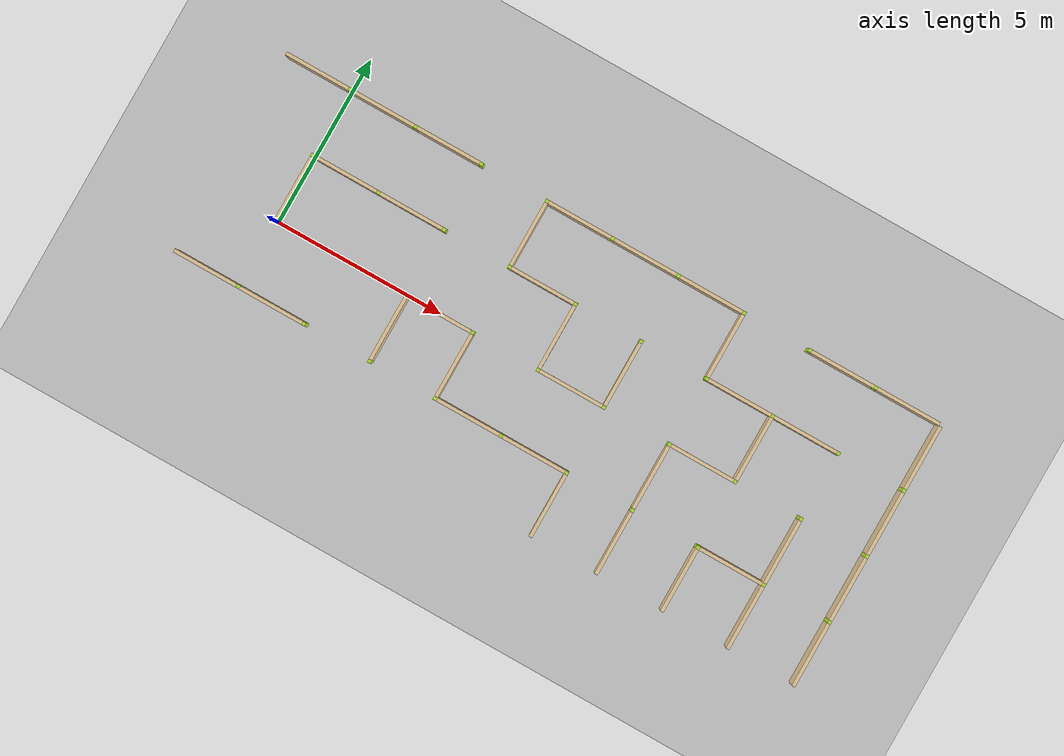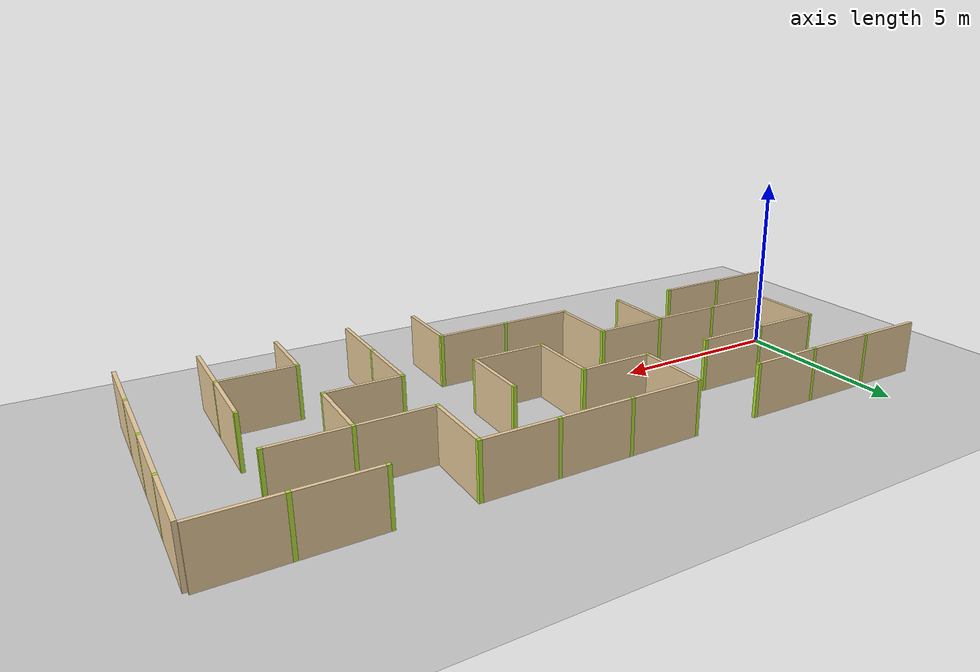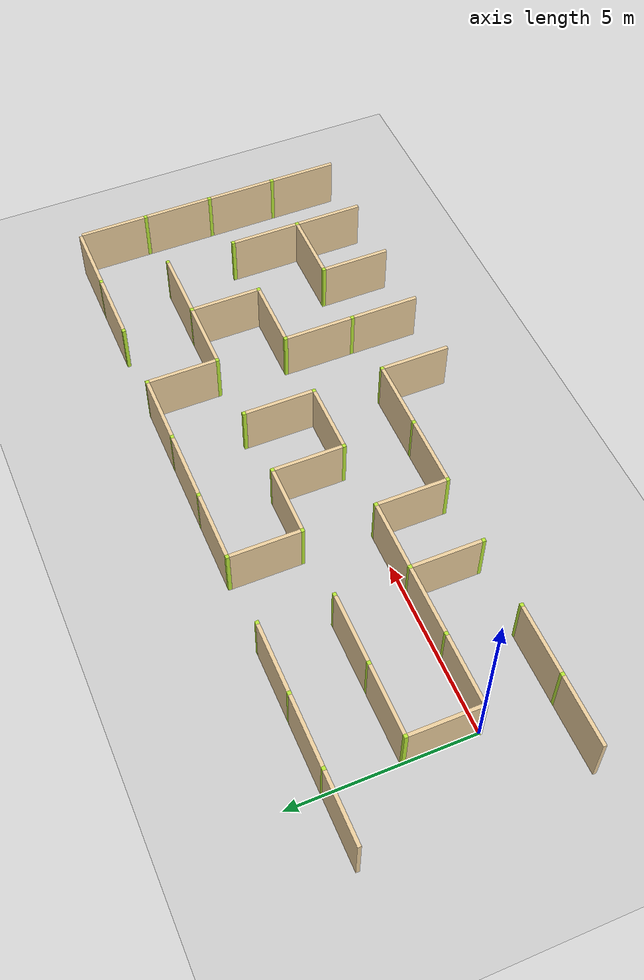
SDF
<sdf version="1.4">
 <world name="maze_world">
  <model name="ground">
   <static>true</static>
   <link name="ground_link">
    <collision name="collision1"><geometry><plane><normal>0 0 1</normal></plane></geometry></collision>
    <visual name="visual1"><geometry><plane><normal>0 0 1</normal><size>100 100</size></plane></geometry></visual>
   </link>
  </model>
  <model name="Untitled">
   <link name="Wall_9_8_h">
    <collision name="Wall_0_Collision">
     <geometry><box><size>1.9 0.1 1.5</size></box></geometry>
     <pose>0 0 0.75 0 -0 0</pose>
    </collision>
    <visual name="Wall_0_Visual">
     <pose>0 0 0.75 0 -0 0</pose>
     <geometry><box><size>1.9 0.1 1.5</size></box></geometry>
     <material>
      <script><uri>file://media/materials/scripts/gazebo.material</uri><name>Gazebo/Grey</name></script>
      <ambient>0.921569 0.807843 0.615686 1</ambient>
     </material>
     <meta><layer>0</layer></meta>
    </visual>
    <pose>-1.0 4 0 0 -0 0</pose>
   </link>
   <link name="Wall_10_8_h">
    <collision name="Wall_0_Collision">
     <geometry><box><size>1.9 0.1 1.5</size></box></geometry>
     <pose>0 0 0.75 0 -0 0</pose>
    </collision>
    <visual name="Wall_0_Visual">
     <pose>0 0 0.75 0 -0 0</pose>
     <geometry><box><size>1.9 0.1 1.5</size></box></geometry>
     <material>
      <script><uri>file://media/materials/scripts/gazebo.material</uri><name>Gazebo/Grey</name></script>
      <ambient>0.921569 0.807843 0.615686 1</ambient>
     </material>
     <meta><layer>0</layer></meta>
    </visual>
    <pose>1.0 4 0 0 -0 0</pose>
   </link>
   <link name="Joint_0_4">
    <collision name="Wall_2_Collision">
     <geometry><box><size>0.1 0.1 1.5</size></box></geometry>
     <pose>0 0 0.75 0 -0 0</pose>
    </collision>
    <visual name="Wall_2_Visual">
     <pose>0 0 0.75 0 -0 0</pose>
     <geometry><box><size>0.1 0.1 1.5</size></box></geometry>
     <material>
      <script><uri>file://media/materials/scripts/gazebo.material</uri><name>Gazebo/Grey</name></script>
      <ambient>0.721569 0.907843 0.215686 1</ambient>
     </material>
     <meta><layer>0</layer></meta>
    </visual>
    <pose>0 4 0 0 -0 0</pose>
   </link>
   <link name="Wall_11_8_h">
    <collision name="Wall_0_Collision">
     <geometry><box><size>1.9 0.1 1.5</size></box></geometry>
     <pose>0 0 0.75 0 -0 0</pose>
    </collision>
    <visual name="Wall_0_Visual">
     <pose>0 0 0.75 0 -0 0</pose>
     <geometry><box><size>1.9 0.1 1.5</size></box></geometry>
     <material>
      <script><uri>file://media/materials/scripts/gazebo.material</uri><name>Gazebo/Grey</name></script>
      <ambient>0.921569 0.807843 0.615686 1</ambient>
     </material>
     <meta><layer>0</layer></meta>
    </visual>
    <pose>3.0 4 0 0 -0 0</pose>
   </link>
   <link name="Joint_2_4">
    <collision name="Wall_2_Collision">
     <geometry><box><size>0.1 0.1 1.5</size></box></geometry>
     <pose>0 0 0.75 0 -0 0</pose>
    </collision>
    <visual name="Wall_2_Visual">
     <pose>0 0 0.75 0 -0 0</pose>
     <geometry><box><size>0.1 0.1 1.5</size></box></geometry>
     <material>
      <script><uri>file://media/materials/scripts/gazebo.material</uri><name>Gazebo/Grey</name></script>
      <ambient>0.721569 0.907843 0.215686 1</ambient>
     </material>
     <meta><layer>0</layer></meta>
    </visual>
    <pose>2 4 0 0 -0 0</pose>
   </link>
   <link name="Joint_4_4">
    <collision name="Wall_2_Collision">
     <geometry><box><size>0.1 0.1 1.5</size></box></geometry>
     <pose>0 0 0.75 0 -0 0</pose>
    </collision>
    <visual name="Wall_2_Visual">
     <pose>0 0 0.75 0 -0 0</pose>
     <geometry><box><size>0.1 0.1 1.5</size></box></geometry>
     <material>
      <script><uri>file://media/materials/scripts/gazebo.material</uri><name>Gazebo/Grey</name></script>
      <ambient>0.721569 0.907843 0.215686 1</ambient>
     </material>
     <meta><layer>0</layer></meta>
    </visual>
    <pose>4 4 0 0 -0 0</pose>
   </link>
   <link name="Wall_13_8_h">
    <collision name="Wall_0_Collision">
     <geometry><box><size>1.9 0.1 1.5</size></box></geometry>
     <pose>0 0 0.75 0 -0 0</pose>
    </collision>
    <visual name="Wall_0_Visual">
     <pose>0 0 0.75 0 -0 0</pose>
     <geometry><box><size>1.9 0.1 1.5</size></box></geometry>
     <material>
      <script><uri>file://media/materials/scripts/gazebo.material</uri><name>Gazebo/Grey</name></script>
      <ambient>0.921569 0.807843 0.615686 1</ambient>
     </material>
     <meta><layer>0</layer></meta>
    </visual>
    <pose>7.0 4 0 0 -0 0</pose>
   </link>
   <link name="Wall_13_8_v">
    <collision name="Wall_0_Collision">
     <geometry><box><size>1.9 0.1 1.5</size></box></geometry>
     <pose>0 0 0.75 0 -0 0</pose>
    </collision>
    <visual name="Wall_0_Visual">
     <pose>0 0 0.75 0 -0 0</pose>
     <geometry><box><size>1.9 0.1 1.5</size></box></geometry>
     <material>
      <script><uri>file://media/materials/scripts/gazebo.material</uri><name>Gazebo/Grey</name></script>
      <ambient>0.921569 0.807843 0.615686 1</ambient>
     </material>
     <meta><layer>0</layer></meta>
    </visual>
    <pose>6 3.0 0 0 -0 1.5708</pose>
   </link>
   <link name="Joint_6_4">
    <collision name="Wall_2_Collision">
     <geometry><box><size>0.1 0.1 1.5</size></box></geometry>
     <pose>0 0 0.75 0 -0 0</pose>
    </collision>
    <visual name="Wall_2_Visual">
     <pose>0 0 0.75 0 -0 0</pose>
     <geometry><box><size>0.1 0.1 1.5</size></box></geometry>
     <material>
      <script><uri>file://media/materials/scripts/gazebo.material</uri><name>Gazebo/Grey</name></script>
      <ambient>0.721569 0.907843 0.215686 1</ambient>
     </material>
     <meta><layer>0</layer></meta>
    </visual>
    <pose>6 4 0 0 -0 0</pose>
   </link>
   <link name="Wall_14_8_h">
    <collision name="Wall_0_Collision">
     <geometry><box><size>1.9 0.1 1.5</size></box></geometry>
     <pose>0 0 0.75 0 -0 0</pose>
    </collision>
    <visual name="Wall_0_Visual">
     <pose>0 0 0.75 0 -0 0</pose>
     <geometry><box><size>1.9 0.1 1.5</size></box></geometry>
     <material>
      <script><uri>file://media/materials/scripts/gazebo.material</uri><name>Gazebo/Grey</name></script>
      <ambient>0.921569 0.807843 0.615686 1</ambient>
     </material>
     <meta><layer>0</layer></meta>
    </visual>
    <pose>9.0 4 0 0 -0 0</pose>
   </link>
   <link name="Joint_8_4">
    <collision name="Wall_2_Collision">
     <geometry><box><size>0.1 0.1 1.5</size></box></geometry>
     <pose>0 0 0.75 0 -0 0</pose>
    </collision>
    <visual name="Wall_2_Visual">
     <pose>0 0 0.75 0 -0 0</pose>
     <geometry><box><size>0.1 0.1 1.5</size></box></geometry>
     <material>
      <script><uri>file://media/materials/scripts/gazebo.material</uri><name>Gazebo/Grey</name></script>
      <ambient>0.721569 0.907843 0.215686 1</ambient>
     </material>
     <meta><layer>0</layer></meta>
    </visual>
    <pose>8 4 0 0 -0 0</pose>
   </link>
   <link name="Wall_15_8_h">
    <collision name="Wall_0_Collision">
     <geometry><box><size>1.9 0.1 1.5</size></box></geometry>
     <pose>0 0 0.75 0 -0 0</pose>
    </collision>
    <visual name="Wall_0_Visual">
     <pose>0 0 0.75 0 -0 0</pose>
     <geometry><box><size>1.9 0.1 1.5</size></box></geometry>
     <material>
      <script><uri>file://media/materials/scripts/gazebo.material</uri><name>Gazebo/Grey</name></script>
      <ambient>0.921569 0.807843 0.615686 1</ambient>
     </material>
     <meta><layer>0</layer></meta>
    </visual>
    <pose>11.0 4 0 0 -0 0</pose>
   </link>
   <link name="Joint_10_4">
    <collision name="Wall_2_Collision">
     <geometry><box><size>0.1 0.1 1.5</size></box></geometry>
     <pose>0 0 0.75 0 -0 0</pose>
    </collision>
    <visual name="Wall_2_Visual">
     <pose>0 0 0.75 0 -0 0</pose>
     <geometry><box><size>0.1 0.1 1.5</size></box></geometry>
     <material>
      <script><uri>file://media/materials/scripts/gazebo.material</uri><name>Gazebo/Grey</name></script>
      <ambient>0.721569 0.907843 0.215686 1</ambient>
     </material>
     <meta><layer>0</layer></meta>
    </visual>
    <pose>10 4 0 0 -0 0</pose>
   </link>
   <link name="Wall_16_8_v">
    <collision name="Wall_0_Collision">
     <geometry><box><size>1.9 0.1 1.5</size></box></geometry>
     <pose>0 0 0.75 0 -0 0</pose>
    </collision>
    <visual name="Wall_0_Visual">
     <pose>0 0 0.75 0 -0 0</pose>
     <geometry><box><size>1.9 0.1 1.5</size></box></geometry>
     <material>
      <script><uri>file://media/materials/scripts/gazebo.material</uri><name>Gazebo/Grey</name></script>
      <ambient>0.921569 0.807843 0.615686 1</ambient>
     </material>
     <meta><layer>0</layer></meta>
    </visual>
    <pose>12 3.0 0 0 -0 1.5708</pose>
   </link>
   <link name="Joint_12_4">
    <collision name="Wall_2_Collision">
     <geometry><box><size>0.1 0.1 1.5</size></box></geometry>
     <pose>0 0 0.75 0 -0 0</pose>
    </collision>
    <visual name="Wall_2_Visual">
     <pose>0 0 0.75 0 -0 0</pose>
     <geometry><box><size>0.1 0.1 1.5</size></box></geometry>
     <material>
      <script><uri>file://media/materials/scripts/gazebo.material</uri><name>Gazebo/Grey</name></script>
      <ambient>0.721569 0.907843 0.215686 1</ambient>
     </material>
     <meta><layer>0</layer></meta>
    </visual>
    <pose>12 4 0 0 -0 0</pose>
   </link>
   <link name="Wall_17_8_h">
    <collision name="Wall_0_Collision">
     <geometry><box><size>1.9 0.1 1.5</size></box></geometry>
     <pose>0 0 0.75 0 -0 0</pose>
    </collision>
    <visual name="Wall_0_Visual">
     <pose>0 0 0.75 0 -0 0</pose>
     <geometry><box><size>1.9 0.1 1.5</size></box></geometry>
     <material>
      <script><uri>file://media/materials/scripts/gazebo.material</uri><name>Gazebo/Grey</name></script>
      <ambient>0.921569 0.807843 0.615686 1</ambient>
     </material>
     <meta><layer>0</layer></meta>
    </visual>
    <pose>15.0 4 0 0 -0 0</pose>
   </link>
   <link name="Joint_14_4">
    <collision name="Wall_2_Collision">
     <geometry><box><size>0.1 0.1 1.5</size></box></geometry>
     <pose>0 0 0.75 0 -0 0</pose>
    </collision>
    <visual name="Wall_2_Visual">
     <pose>0 0 0.75 0 -0 0</pose>
     <geometry><box><size>0.1 0.1 1.5</size></box></geometry>
     <material>
      <script><uri>file://media/materials/scripts/gazebo.material</uri><name>Gazebo/Grey</name></script>
      <ambient>0.721569 0.907843 0.215686 1</ambient>
     </material>
     <meta><layer>0</layer></meta>
    </visual>
    <pose>14 4 0 0 -0 0</pose>
   </link>
   <link name="Wall_18_8_h">
    <collision name="Wall_0_Collision">
     <geometry><box><size>1.9 0.1 1.5</size></box></geometry>
     <pose>0 0 0.75 0 -0 0</pose>
    </collision>
    <visual name="Wall_0_Visual">
     <pose>0 0 0.75 0 -0 0</pose>
     <geometry><box><size>1.9 0.1 1.5</size></box></geometry>
     <material>
      <script><uri>file://media/materials/scripts/gazebo.material</uri><name>Gazebo/Grey</name></script>
      <ambient>0.921569 0.807843 0.615686 1</ambient>
     </material>
     <meta><layer>0</layer></meta>
    </visual>
    <pose>17.0 4 0 0 -0 0</pose>
   </link>
   <link name="Joint_16_4">
    <collision name="Wall_2_Collision">
     <geometry><box><size>0.1 0.1 1.5</size></box></geometry>
     <pose>0 0 0.75 0 -0 0</pose>
    </collision>
    <visual name="Wall_2_Visual">
     <pose>0 0 0.75 0 -0 0</pose>
     <geometry><box><size>0.1 0.1 1.5</size></box></geometry>
     <material>
      <script><uri>file://media/materials/scripts/gazebo.material</uri><name>Gazebo/Grey</name></script>
      <ambient>0.721569 0.907843 0.215686 1</ambient>
     </material>
     <meta><layer>0</layer></meta>
    </visual>
    <pose>16 4 0 0 -0 0</pose>
   </link>
   <link name="Wall_19_8_v">
    <collision name="Wall_0_Collision">
     <geometry><box><size>1.9 0.1 1.5</size></box></geometry>
     <pose>0 0 0.75 0 -0 0</pose>
    </collision>
    <visual name="Wall_0_Visual">
     <pose>0 0 0.75 0 -0 0</pose>
     <geometry><box><size>1.9 0.1 1.5</size></box></geometry>
     <material>
      <script><uri>file://media/materials/scripts/gazebo.material</uri><name>Gazebo/Grey</name></script>
      <ambient>0.921569 0.807843 0.615686 1</ambient>
     </material>
     <meta><layer>0</layer></meta>
    </visual>
    <pose>18 3.0 0 0 -0 1.5708</pose>
   </link>
   <link name="Wall_10_9_h">
    <collision name="Wall_0_Collision">
     <geometry><box><size>1.9 0.1 1.5</size></box></geometry>
     <pose>0 0 0.75 0 -0 0</pose>
    </collision>
    <visual name="Wall_0_Visual">
     <pose>0 0 0.75 0 -0 0</pose>
     <geometry><box><size>1.9 0.1 1.5</size></box></geometry>
     <material>
      <script><uri>file://media/materials/scripts/gazebo.material</uri><name>Gazebo/Grey</name></script>
      <ambient>0.921569 0.807843 0.615686 1</ambient>
     </material>
     <meta><layer>0</layer></meta>
    </visual>
    <pose>1.0 2 0 0 -0 0</pose>
   </link>
   <link name="Wall_10_9_v">
    <collision name="Wall_0_Collision">
     <geometry><box><size>1.9 0.1 1.5</size></box></geometry>
     <pose>0 0 0.75 0 -0 0</pose>
    </collision>
    <visual name="Wall_0_Visual">
     <pose>0 0 0.75 0 -0 0</pose>
     <geometry><box><size>1.9 0.1 1.5</size></box></geometry>
     <material>
      <script><uri>file://media/materials/scripts/gazebo.material</uri><name>Gazebo/Grey</name></script>
      <ambient>0.921569 0.807843 0.615686 1</ambient>
     </material>
     <meta><layer>0</layer></meta>
    </visual>
    <pose>0 1.0 0 0 -0 1.5708</pose>
   </link>
   <link name="Joint_0_2">
    <collision name="Wall_2_Collision">
     <geometry><box><size>0.1 0.1 1.5</size></box></geometry>
     <pose>0 0 0.75 0 -0 0</pose>
    </collision>
    <visual name="Wall_2_Visual">
     <pose>0 0 0.75 0 -0 0</pose>
     <geometry><box><size>0.1 0.1 1.5</size></box></geometry>
     <material>
      <script><uri>file://media/materials/scripts/gazebo.material</uri><name>Gazebo/Grey</name></script>
      <ambient>0.721569 0.907843 0.215686 1</ambient>
     </material>
     <meta><layer>0</layer></meta>
    </visual>
    <pose>0 2 0 0 -0 0</pose>
   </link>
   <link name="Wall_11_9_h">
    <collision name="Wall_0_Collision">
     <geometry><box><size>1.9 0.1 1.5</size></box></geometry>
     <pose>0 0 0.75 0 -0 0</pose>
    </collision>
    <visual name="Wall_0_Visual">
     <pose>0 0 0.75 0 -0 0</pose>
     <geometry><box><size>1.9 0.1 1.5</size></box></geometry>
     <material>
      <script><uri>file://media/materials/scripts/gazebo.material</uri><name>Gazebo/Grey</name></script>
      <ambient>0.921569 0.807843 0.615686 1</ambient>
     </material>
     <meta><layer>0</layer></meta>
    </visual>
    <pose>3.0 2 0 0 -0 0</pose>
   </link>
   <link name="Joint_2_2">
    <collision name="Wall_2_Collision">
     <geometry><box><size>0.1 0.1 1.5</size></box></geometry>
     <pose>0 0 0.75 0 -0 0</pose>
    </collision>
    <visual name="Wall_2_Visual">
     <pose>0 0 0.75 0 -0 0</pose>
     <geometry><box><size>0.1 0.1 1.5</size></box></geometry>
     <material>
      <script><uri>file://media/materials/scripts/gazebo.material</uri><name>Gazebo/Grey</name></script>
      <ambient>0.721569 0.907843 0.215686 1</ambient>
     </material>
     <meta><layer>0</layer></meta>
    </visual>
    <pose>2 2 0 0 -0 0</pose>
   </link>
   <link name="Joint_4_2">
    <collision name="Wall_2_Collision">
     <geometry><box><size>0.1 0.1 1.5</size></box></geometry>
     <pose>0 0 0.75 0 -0 0</pose>
    </collision>
    <visual name="Wall_2_Visual">
     <pose>0 0 0.75 0 -0 0</pose>
     <geometry><box><size>0.1 0.1 1.5</size></box></geometry>
     <material>
      <script><uri>file://media/materials/scripts/gazebo.material</uri><name>Gazebo/Grey</name></script>
      <ambient>0.721569 0.907843 0.215686 1</ambient>
     </material>
     <meta><layer>0</layer></meta>
    </visual>
    <pose>4 2 0 0 -0 0</pose>
   </link>
   <link name="Wall_13_9_h">
    <collision name="Wall_0_Collision">
     <geometry><box><size>1.9 0.1 1.5</size></box></geometry>
     <pose>0 0 0.75 0 -0 0</pose>
    </collision>
    <visual name="Wall_0_Visual">
     <pose>0 0 0.75 0 -0 0</pose>
     <geometry><box><size>1.9 0.1 1.5</size></box></geometry>
     <material>
      <script><uri>file://media/materials/scripts/gazebo.material</uri><name>Gazebo/Grey</name></script>
      <ambient>0.921569 0.807843 0.615686 1</ambient>
     </material>
     <meta><layer>0</layer></meta>
    </visual>
    <pose>7.0 2 0 0 -0 0</pose>
   </link>
   <link name="Joint_6_2">
    <collision name="Wall_2_Collision">
     <geometry><box><size>0.1 0.1 1.5</size></box></geometry>
     <pose>0 0 0.75 0 -0 0</pose>
    </collision>
    <visual name="Wall_2_Visual">
     <pose>0 0 0.75 0 -0 0</pose>
     <geometry><box><size>0.1 0.1 1.5</size></box></geometry>
     <material>
      <script><uri>file://media/materials/scripts/gazebo.material</uri><name>Gazebo/Grey</name></script>
      <ambient>0.721569 0.907843 0.215686 1</ambient>
     </material>
     <meta><layer>0</layer></meta>
    </visual>
    <pose>6 2 0 0 -0 0</pose>
   </link>
   <link name="Wall_14_9_v">
    <collision name="Wall_0_Collision">
     <geometry><box><size>1.9 0.1 1.5</size></box></geometry>
     <pose>0 0 0.75 0 -0 0</pose>
    </collision>
    <visual name="Wall_0_Visual">
     <pose>0 0 0.75 0 -0 0</pose>
     <geometry><box><size>1.9 0.1 1.5</size></box></geometry>
     <material>
      <script><uri>file://media/materials/scripts/gazebo.material</uri><name>Gazebo/Grey</name></script>
      <ambient>0.921569 0.807843 0.615686 1</ambient>
     </material>
     <meta><layer>0</layer></meta>
    </visual>
    <pose>8 1.0 0 0 -0 1.5708</pose>
   </link>
   <link name="Joint_8_2">
    <collision name="Wall_2_Collision">
     <geometry><box><size>0.1 0.1 1.5</size></box></geometry>
     <pose>0 0 0.75 0 -0 0</pose>
    </collision>
    <visual name="Wall_2_Visual">
     <pose>0 0 0.75 0 -0 0</pose>
     <geometry><box><size>0.1 0.1 1.5</size></box></geometry>
     <material>
      <script><uri>file://media/materials/scripts/gazebo.material</uri><name>Gazebo/Grey</name></script>
      <ambient>0.721569 0.907843 0.215686 1</ambient>
     </material>
     <meta><layer>0</layer></meta>
    </visual>
    <pose>8 2 0 0 -0 0</pose>
   </link>
   <link name="Wall_15_9_v">
    <collision name="Wall_0_Collision">
     <geometry><box><size>1.9 0.1 1.5</size></box></geometry>
     <pose>0 0 0.75 0 -0 0</pose>
    </collision>
    <visual name="Wall_0_Visual">
     <pose>0 0 0.75 0 -0 0</pose>
     <geometry><box><size>1.9 0.1 1.5</size></box></geometry>
     <material>
      <script><uri>file://media/materials/scripts/gazebo.material</uri><name>Gazebo/Grey</name></script>
      <ambient>0.921569 0.807843 0.615686 1</ambient>
     </material>
     <meta><layer>0</layer></meta>
    </visual>
    <pose>10 1.0 0 0 -0 1.5708</pose>
   </link>
   <link name="Joint_10_2">
    <collision name="Wall_2_Collision">
     <geometry><box><size>0.1 0.1 1.5</size></box></geometry>
     <pose>0 0 0.75 0 -0 0</pose>
    </collision>
    <visual name="Wall_2_Visual">
     <pose>0 0 0.75 0 -0 0</pose>
     <geometry><box><size>0.1 0.1 1.5</size></box></geometry>
     <material>
      <script><uri>file://media/materials/scripts/gazebo.material</uri><name>Gazebo/Grey</name></script>
      <ambient>0.721569 0.907843 0.215686 1</ambient>
     </material>
     <meta><layer>0</layer></meta>
    </visual>
    <pose>10 2 0 0 -0 0</pose>
   </link>
   <link name="Wall_16_9_h">
    <collision name="Wall_0_Collision">
     <geometry><box><size>1.9 0.1 1.5</size></box></geometry>
     <pose>0 0 0.75 0 -0 0</pose>
    </collision>
    <visual name="Wall_0_Visual">
     <pose>0 0 0.75 0 -0 0</pose>
     <geometry><box><size>1.9 0.1 1.5</size></box></geometry>
     <material>
      <script><uri>file://media/materials/scripts/gazebo.material</uri><name>Gazebo/Grey</name></script>
      <ambient>0.921569 0.807843 0.615686 1</ambient>
     </material>
     <meta><layer>0</layer></meta>
    </visual>
    <pose>13.0 2 0 0 -0 0</pose>
   </link>
   <link name="Joint_12_2">
    <collision name="Wall_2_Collision">
     <geometry><box><size>0.1 0.1 1.5</size></box></geometry>
     <pose>0 0 0.75 0 -0 0</pose>
    </collision>
    <visual name="Wall_2_Visual">
     <pose>0 0 0.75 0 -0 0</pose>
     <geometry><box><size>0.1 0.1 1.5</size></box></geometry>
     <material>
      <script><uri>file://media/materials/scripts/gazebo.material</uri><name>Gazebo/Grey</name></script>
      <ambient>0.721569 0.907843 0.215686 1</ambient>
     </material>
     <meta><layer>0</layer></meta>
    </visual>
    <pose>12 2 0 0 -0 0</pose>
   </link>
   <link name="Wall_17_9_h">
    <collision name="Wall_0_Collision">
     <geometry><box><size>1.9 0.1 1.5</size></box></geometry>
     <pose>0 0 0.75 0 -0 0</pose>
    </collision>
    <visual name="Wall_0_Visual">
     <pose>0 0 0.75 0 -0 0</pose>
     <geometry><box><size>1.9 0.1 1.5</size></box></geometry>
     <material>
      <script><uri>file://media/materials/scripts/gazebo.material</uri><name>Gazebo/Grey</name></script>
      <ambient>0.921569 0.807843 0.615686 1</ambient>
     </material>
     <meta><layer>0</layer></meta>
    </visual>
    <pose>15.0 2 0 0 -0 0</pose>
   </link>
   <link name="Wall_17_9_v">
    <collision name="Wall_0_Collision">
     <geometry><box><size>1.9 0.1 1.5</size></box></geometry>
     <pose>0 0 0.75 0 -0 0</pose>
    </collision>
    <visual name="Wall_0_Visual">
     <pose>0 0 0.75 0 -0 0</pose>
     <geometry><box><size>1.9 0.1 1.5</size></box></geometry>
     <material>
      <script><uri>file://media/materials/scripts/gazebo.material</uri><name>Gazebo/Grey</name></script>
      <ambient>0.921569 0.807843 0.615686 1</ambient>
     </material>
     <meta><layer>0</layer></meta>
    </visual>
    <pose>14 1.0 0 0 -0 1.5708</pose>
   </link>
   <link name="Joint_14_2">
    <collision name="Wall_2_Collision">
     <geometry><box><size>0.1 0.1 1.5</size></box></geometry>
     <pose>0 0 0.75 0 -0 0</pose>
    </collision>
    <visual name="Wall_2_Visual">
     <pose>0 0 0.75 0 -0 0</pose>
     <geometry><box><size>0.1 0.1 1.5</size></box></geometry>
     <material>
      <script><uri>file://media/materials/scripts/gazebo.material</uri><name>Gazebo/Grey</name></script>
      <ambient>0.721569 0.907843 0.215686 1</ambient>
     </material>
     <meta><layer>0</layer></meta>
    </visual>
    <pose>14 2 0 0 -0 0</pose>
   </link>
   <link name="Joint_16_2">
    <collision name="Wall_2_Collision">
     <geometry><box><size>0.1 0.1 1.5</size></box></geometry>
     <pose>0 0 0.75 0 -0 0</pose>
    </collision>
    <visual name="Wall_2_Visual">
     <pose>0 0 0.75 0 -0 0</pose>
     <geometry><box><size>0.1 0.1 1.5</size></box></geometry>
     <material>
      <script><uri>file://media/materials/scripts/gazebo.material</uri><name>Gazebo/Grey</name></script>
      <ambient>0.721569 0.907843 0.215686 1</ambient>
     </material>
     <meta><layer>0</layer></meta>
    </visual>
    <pose>16 2 0 0 -0 0</pose>
   </link>
   <link name="Wall_19_9_v">
    <collision name="Wall_0_Collision">
     <geometry><box><size>1.9 0.1 1.5</size></box></geometry>
     <pose>0 0 0.75 0 -0 0</pose>
    </collision>
    <visual name="Wall_0_Visual">
     <pose>0 0 0.75 0 -0 0</pose>
     <geometry><box><size>1.9 0.1 1.5</size></box></geometry>
     <material>
      <script><uri>file://media/materials/scripts/gazebo.material</uri><name>Gazebo/Grey</name></script>
      <ambient>0.921569 0.807843 0.615686 1</ambient>
     </material>
     <meta><layer>0</layer></meta>
    </visual>
    <pose>18 1.0 0 0 -0 1.5708</pose>
   </link>
   <link name="Joint_18_2">
    <collision name="Wall_2_Collision">
     <geometry><box><size>0.1 0.1 1.5</size></box></geometry>
     <pose>0 0 0.75 0 -0 0</pose>
    </collision>
    <visual name="Wall_2_Visual">
     <pose>0 0 0.75 0 -0 0</pose>
     <geometry><box><size>0.1 0.1 1.5</size></box></geometry>
     <material>
      <script><uri>file://media/materials/scripts/gazebo.material</uri><name>Gazebo/Grey</name></script>
      <ambient>0.721569 0.907843 0.215686 1</ambient>
     </material>
     <meta><layer>0</layer></meta>
    </visual>
    <pose>18 2 0 0 -0 0</pose>
   </link>
   <link name="Wall_10_10_h">
    <collision name="Wall_0_Collision">
     <geometry><box><size>1.9 0.1 1.5</size></box></geometry>
     <pose>0 0 0.75 0 -0 0</pose>
    </collision>
    <visual name="Wall_0_Visual">
     <pose>0 0 0.75 0 -0 0</pose>
     <geometry><box><size>1.9 0.1 1.5</size></box></geometry>
     <material>
      <script><uri>file://media/materials/scripts/gazebo.material</uri><name>Gazebo/Grey</name></script>
      <ambient>0.921569 0.807843 0.615686 1</ambient>
     </material>
     <meta><layer>0</layer></meta>
    </visual>
    <pose>1.0 0 0 0 -0 0</pose>
   </link>
   <link name="Joint_0_0">
    <collision name="Wall_2_Collision">
     <geometry><box><size>0.1 0.1 1.5</size></box></geometry>
     <pose>0 0 0.75 0 -0 0</pose>
    </collision>
    <visual name="Wall_2_Visual">
     <pose>0 0 0.75 0 -0 0</pose>
     <geometry><box><size>0.1 0.1 1.5</size></box></geometry>
     <material>
      <script><uri>file://media/materials/scripts/gazebo.material</uri><name>Gazebo/Grey</name></script>
      <ambient>0.721569 0.907843 0.215686 1</ambient>
     </material>
     <meta><layer>0</layer></meta>
    </visual>
   </link>
   <link name="Wall_11_10_h">
    <collision name="Wall_0_Collision">
     <geometry><box><size>1.9 0.1 1.5</size></box></geometry>
     <pose>0 0 0.75 0 -0 0</pose>
    </collision>
    <visual name="Wall_0_Visual">
     <pose>0 0 0.75 0 -0 0</pose>
     <geometry><box><size>1.9 0.1 1.5</size></box></geometry>
     <material>
      <script><uri>file://media/materials/scripts/gazebo.material</uri><name>Gazebo/Grey</name></script>
      <ambient>0.921569 0.807843 0.615686 1</ambient>
     </material>
     <meta><layer>0</layer></meta>
    </visual>
    <pose>3.0 0 0 0 -0 0</pose>
   </link>
   <link name="Joint_2_0">
    <collision name="Wall_2_Collision">
     <geometry><box><size>0.1 0.1 1.5</size></box></geometry>
     <pose>0 0 0.75 0 -0 0</pose>
    </collision>
    <visual name="Wall_2_Visual">
     <pose>0 0 0.75 0 -0 0</pose>
     <geometry><box><size>0.1 0.1 1.5</size></box></geometry>
     <material>
      <script><uri>file://media/materials/scripts/gazebo.material</uri><name>Gazebo/Grey</name></script>
      <ambient>0.721569 0.907843 0.215686 1</ambient>
     </material>
     <meta><layer>0</layer></meta>
    </visual>
    <pose>2 0 0 0 -0 0</pose>
   </link>
   <link name="Wall_12_10_h">
    <collision name="Wall_0_Collision">
     <geometry><box><size>1.9 0.1 1.5</size></box></geometry>
     <pose>0 0 0.75 0 -0 0</pose>
    </collision>
    <visual name="Wall_0_Visual">
     <pose>0 0 0.75 0 -0 0</pose>
     <geometry><box><size>1.9 0.1 1.5</size></box></geometry>
     <material>
      <script><uri>file://media/materials/scripts/gazebo.material</uri><name>Gazebo/Grey</name></script>
      <ambient>0.921569 0.807843 0.615686 1</ambient>
     </material>
     <meta><layer>0</layer></meta>
    </visual>
    <pose>5.0 0 0 0 -0 0</pose>
   </link>
   <link name="Wall_12_10_v">
    <collision name="Wall_0_Collision">
     <geometry><box><size>1.9 0.1 1.5</size></box></geometry>
     <pose>0 0 0.75 0 -0 0</pose>
    </collision>
    <visual name="Wall_0_Visual">
     <pose>0 0 0.75 0 -0 0</pose>
     <geometry><box><size>1.9 0.1 1.5</size></box></geometry>
     <material>
      <script><uri>file://media/materials/scripts/gazebo.material</uri><name>Gazebo/Grey</name></script>
      <ambient>0.921569 0.807843 0.615686 1</ambient>
     </material>
     <meta><layer>0</layer></meta>
    </visual>
    <pose>4 -1.0 0 0 -0 1.5708</pose>
   </link>
   <link name="Joint_4_0">
    <collision name="Wall_2_Collision">
     <geometry><box><size>0.1 0.1 1.5</size></box></geometry>
     <pose>0 0 0.75 0 -0 0</pose>
    </collision>
    <visual name="Wall_2_Visual">
     <pose>0 0 0.75 0 -0 0</pose>
     <geometry><box><size>0.1 0.1 1.5</size></box></geometry>
     <material>
      <script><uri>file://media/materials/scripts/gazebo.material</uri><name>Gazebo/Grey</name></script>
      <ambient>0.721569 0.907843 0.215686 1</ambient>
     </material>
     <meta><layer>0</layer></meta>
    </visual>
    <pose>4 0 0 0 -0 0</pose>
   </link>
   <link name="Wall_13_10_v">
    <collision name="Wall_0_Collision">
     <geometry><box><size>1.9 0.1 1.5</size></box></geometry>
     <pose>0 0 0.75 0 -0 0</pose>
    </collision>
    <visual name="Wall_0_Visual">
     <pose>0 0 0.75 0 -0 0</pose>
     <geometry><box><size>1.9 0.1 1.5</size></box></geometry>
     <material>
      <script><uri>file://media/materials/scripts/gazebo.material</uri><name>Gazebo/Grey</name></script>
      <ambient>0.921569 0.807843 0.615686 1</ambient>
     </material>
     <meta><layer>0</layer></meta>
    </visual>
    <pose>6 -1.0 0 0 -0 1.5708</pose>
   </link>
   <link name="Joint_6_0">
    <collision name="Wall_2_Collision">
     <geometry><box><size>0.1 0.1 1.5</size></box></geometry>
     <pose>0 0 0.75 0 -0 0</pose>
    </collision>
    <visual name="Wall_2_Visual">
     <pose>0 0 0.75 0 -0 0</pose>
     <geometry><box><size>0.1 0.1 1.5</size></box></geometry>
     <material>
      <script><uri>file://media/materials/scripts/gazebo.material</uri><name>Gazebo/Grey</name></script>
      <ambient>0.721569 0.907843 0.215686 1</ambient>
     </material>
     <meta><layer>0</layer></meta>
    </visual>
    <pose>6 0 0 0 -0 0</pose>
   </link>
   <link name="Wall_14_10_h">
    <collision name="Wall_0_Collision">
     <geometry><box><size>1.9 0.1 1.5</size></box></geometry>
     <pose>0 0 0.75 0 -0 0</pose>
    </collision>
    <visual name="Wall_0_Visual">
     <pose>0 0 0.75 0 -0 0</pose>
     <geometry><box><size>1.9 0.1 1.5</size></box></geometry>
     <material>
      <script><uri>file://media/materials/scripts/gazebo.material</uri><name>Gazebo/Grey</name></script>
      <ambient>0.921569 0.807843 0.615686 1</ambient>
     </material>
     <meta><layer>0</layer></meta>
    </visual>
    <pose>9.0 0 0 0 -0 0</pose>
   </link>
   <link name="Joint_8_0">
    <collision name="Wall_2_Collision">
     <geometry><box><size>0.1 0.1 1.5</size></box></geometry>
     <pose>0 0 0.75 0 -0 0</pose>
    </collision>
    <visual name="Wall_2_Visual">
     <pose>0 0 0.75 0 -0 0</pose>
     <geometry><box><size>0.1 0.1 1.5</size></box></geometry>
     <material>
      <script><uri>file://media/materials/scripts/gazebo.material</uri><name>Gazebo/Grey</name></script>
      <ambient>0.721569 0.907843 0.215686 1</ambient>
     </material>
     <meta><layer>0</layer></meta>
    </visual>
    <pose>8 0 0 0 -0 0</pose>
   </link>
   <link name="Joint_10_0">
    <collision name="Wall_2_Collision">
     <geometry><box><size>0.1 0.1 1.5</size></box></geometry>
     <pose>0 0 0.75 0 -0 0</pose>
    </collision>
    <visual name="Wall_2_Visual">
     <pose>0 0 0.75 0 -0 0</pose>
     <geometry><box><size>0.1 0.1 1.5</size></box></geometry>
     <material>
      <script><uri>file://media/materials/scripts/gazebo.material</uri><name>Gazebo/Grey</name></script>
      <ambient>0.721569 0.907843 0.215686 1</ambient>
     </material>
     <meta><layer>0</layer></meta>
    </visual>
    <pose>10 0 0 0 -0 0</pose>
   </link>
   <link name="Wall_16_10_h">
    <collision name="Wall_0_Collision">
     <geometry><box><size>1.9 0.1 1.5</size></box></geometry>
     <pose>0 0 0.75 0 -0 0</pose>
    </collision>
    <visual name="Wall_0_Visual">
     <pose>0 0 0.75 0 -0 0</pose>
     <geometry><box><size>1.9 0.1 1.5</size></box></geometry>
     <material>
      <script><uri>file://media/materials/scripts/gazebo.material</uri><name>Gazebo/Grey</name></script>
      <ambient>0.921569 0.807843 0.615686 1</ambient>
     </material>
     <meta><layer>0</layer></meta>
    </visual>
    <pose>13.0 0 0 0 -0 0</pose>
   </link>
   <link name="Wall_16_10_v">
    <collision name="Wall_0_Collision">
     <geometry><box><size>1.9 0.1 1.5</size></box></geometry>
     <pose>0 0 0.75 0 -0 0</pose>
    </collision>
    <visual name="Wall_0_Visual">
     <pose>0 0 0.75 0 -0 0</pose>
     <geometry><box><size>1.9 0.1 1.5</size></box></geometry>
     <material>
      <script><uri>file://media/materials/scripts/gazebo.material</uri><name>Gazebo/Grey</name></script>
      <ambient>0.921569 0.807843 0.615686 1</ambient>
     </material>
     <meta><layer>0</layer></meta>
    </visual>
    <pose>12 -1.0 0 0 -0 1.5708</pose>
   </link>
   <link name="Joint_12_0">
    <collision name="Wall_2_Collision">
     <geometry><box><size>0.1 0.1 1.5</size></box></geometry>
     <pose>0 0 0.75 0 -0 0</pose>
    </collision>
    <visual name="Wall_2_Visual">
     <pose>0 0 0.75 0 -0 0</pose>
     <geometry><box><size>0.1 0.1 1.5</size></box></geometry>
     <material>
      <script><uri>file://media/materials/scripts/gazebo.material</uri><name>Gazebo/Grey</name></script>
      <ambient>0.721569 0.907843 0.215686 1</ambient>
     </material>
     <meta><layer>0</layer></meta>
    </visual>
    <pose>12 0 0 0 -0 0</pose>
   </link>
   <link name="Joint_14_0">
    <collision name="Wall_2_Collision">
     <geometry><box><size>0.1 0.1 1.5</size></box></geometry>
     <pose>0 0 0.75 0 -0 0</pose>
    </collision>
    <visual name="Wall_2_Visual">
     <pose>0 0 0.75 0 -0 0</pose>
     <geometry><box><size>0.1 0.1 1.5</size></box></geometry>
     <material>
      <script><uri>file://media/materials/scripts/gazebo.material</uri><name>Gazebo/Grey</name></script>
      <ambient>0.721569 0.907843 0.215686 1</ambient>
     </material>
     <meta><layer>0</layer></meta>
    </visual>
    <pose>14 0 0 0 -0 0</pose>
   </link>
   <link name="Wall_18_10_v">
    <collision name="Wall_0_Collision">
     <geometry><box><size>1.9 0.1 1.5</size></box></geometry>
     <pose>0 0 0.75 0 -0 0</pose>
    </collision>
    <visual name="Wall_0_Visual">
     <pose>0 0 0.75 0 -0 0</pose>
     <geometry><box><size>1.9 0.1 1.5</size></box></geometry>
     <material>
      <script><uri>file://media/materials/scripts/gazebo.material</uri><name>Gazebo/Grey</name></script>
      <ambient>0.921569 0.807843 0.615686 1</ambient>
     </material>
     <meta><layer>0</layer></meta>
    </visual>
    <pose>16 -1.0 0 0 -0 1.5708</pose>
   </link>
   <link name="Joint_16_0">
    <collision name="Wall_2_Collision">
     <geometry><box><size>0.1 0.1 1.5</size></box></geometry>
     <pose>0 0 0.75 0 -0 0</pose>
    </collision>
    <visual name="Wall_2_Visual">
     <pose>0 0 0.75 0 -0 0</pose>
     <geometry><box><size>0.1 0.1 1.5</size></box></geometry>
     <material>
      <script><uri>file://media/materials/scripts/gazebo.material</uri><name>Gazebo/Grey</name></script>
      <ambient>0.721569 0.907843 0.215686 1</ambient>
     </material>
     <meta><layer>0</layer></meta>
    </visual>
    <pose>16 0 0 0 -0 0</pose>
   </link>
   <link name="Wall_19_10_v">
    <collision name="Wall_0_Collision">
     <geometry><box><size>1.9 0.1 1.5</size></box></geometry>
     <pose>0 0 0.75 0 -0 0</pose>
    </collision>
    <visual name="Wall_0_Visual">
     <pose>0 0 0.75 0 -0 0</pose>
     <geometry><box><size>1.9 0.1 1.5</size></box></geometry>
     <material>
      <script><uri>file://media/materials/scripts/gazebo.material</uri><name>Gazebo/Grey</name></script>
      <ambient>0.921569 0.807843 0.615686 1</ambient>
     </material>
     <meta><layer>0</layer></meta>
    </visual>
    <pose>18 -1.0 0 0 -0 1.5708</pose>
   </link>
   <link name="Joint_18_0">
    <collision name="Wall_2_Collision">
     <geometry><box><size>0.1 0.1 1.5</size></box></geometry>
     <pose>0 0 0.75 0 -0 0</pose>
    </collision>
    <visual name="Wall_2_Visual">
     <pose>0 0 0.75 0 -0 0</pose>
     <geometry><box><size>0.1 0.1 1.5</size></box></geometry>
     <material>
      <script><uri>file://media/materials/scripts/gazebo.material</uri><name>Gazebo/Grey</name></script>
      <ambient>0.721569 0.907843 0.215686 1</ambient>
     </material>
     <meta><layer>0</layer></meta>
    </visual>
    <pose>18 0 0 0 -0 0</pose>
   </link>
   <link name="Wall_9_11_h">
    <collision name="Wall_0_Collision">
     <geometry><box><size>1.9 0.1 1.5</size></box></geometry>
     <pose>0 0 0.75 0 -0 0</pose>
    </collision>
    <visual name="Wall_0_Visual">
     <pose>0 0 0.75 0 -0 0</pose>
     <geometry><box><size>1.9 0.1 1.5</size></box></geometry>
     <material>
      <script><uri>file://media/materials/scripts/gazebo.material</uri><name>Gazebo/Grey</name></script>
      <ambient>0.921569 0.807843 0.615686 1</ambient>
     </material>
     <meta><layer>0</layer></meta>
    </visual>
    <pose>-1.0 -2 0 0 -0 0</pose>
   </link>
   <link name="Wall_10_11_h">
    <collision name="Wall_0_Collision">
     <geometry><box><size>1.9 0.1 1.5</size></box></geometry>
     <pose>0 0 0.75 0 -0 0</pose>
    </collision>
    <visual name="Wall_0_Visual">
     <pose>0 0 0.75 0 -0 0</pose>
     <geometry><box><size>1.9 0.1 1.5</size></box></geometry>
     <material>
      <script><uri>file://media/materials/scripts/gazebo.material</uri><name>Gazebo/Grey</name></script>
      <ambient>0.921569 0.807843 0.615686 1</ambient>
     </material>
     <meta><layer>0</layer></meta>
    </visual>
    <pose>1.0 -2 0 0 -0 0</pose>
   </link>
   <link name="Joint_0_-2">
    <collision name="Wall_2_Collision">
     <geometry><box><size>0.1 0.1 1.5</size></box></geometry>
     <pose>0 0 0.75 0 -0 0</pose>
    </collision>
    <visual name="Wall_2_Visual">
     <pose>0 0 0.75 0 -0 0</pose>
     <geometry><box><size>0.1 0.1 1.5</size></box></geometry>
     <material>
      <script><uri>file://media/materials/scripts/gazebo.material</uri><name>Gazebo/Grey</name></script>
      <ambient>0.721569 0.907843 0.215686 1</ambient>
     </material>
     <meta><layer>0</layer></meta>
    </visual>
    <pose>0 -2 0 0 -0 0</pose>
   </link>
   <link name="Joint_2_-2">
    <collision name="Wall_2_Collision">
     <geometry><box><size>0.1 0.1 1.5</size></box></geometry>
     <pose>0 0 0.75 0 -0 0</pose>
    </collision>
    <visual name="Wall_2_Visual">
     <pose>0 0 0.75 0 -0 0</pose>
     <geometry><box><size>0.1 0.1 1.5</size></box></geometry>
     <material>
      <script><uri>file://media/materials/scripts/gazebo.material</uri><name>Gazebo/Grey</name></script>
      <ambient>0.721569 0.907843 0.215686 1</ambient>
     </material>
     <meta><layer>0</layer></meta>
    </visual>
    <pose>2 -2 0 0 -0 0</pose>
   </link>
   <link name="Joint_4_-2">
    <collision name="Wall_2_Collision">
     <geometry><box><size>0.1 0.1 1.5</size></box></geometry>
     <pose>0 0 0.75 0 -0 0</pose>
    </collision>
    <visual name="Wall_2_Visual">
     <pose>0 0 0.75 0 -0 0</pose>
     <geometry><box><size>0.1 0.1 1.5</size></box></geometry>
     <material>
      <script><uri>file://media/materials/scripts/gazebo.material</uri><name>Gazebo/Grey</name></script>
      <ambient>0.721569 0.907843 0.215686 1</ambient>
     </material>
     <meta><layer>0</layer></meta>
    </visual>
    <pose>4 -2 0 0 -0 0</pose>
   </link>
   <link name="Wall_13_11_h">
    <collision name="Wall_0_Collision">
     <geometry><box><size>1.9 0.1 1.5</size></box></geometry>
     <pose>0 0 0.75 0 -0 0</pose>
    </collision>
    <visual name="Wall_0_Visual">
     <pose>0 0 0.75 0 -0 0</pose>
     <geometry><box><size>1.9 0.1 1.5</size></box></geometry>
     <material>
      <script><uri>file://media/materials/scripts/gazebo.material</uri><name>Gazebo/Grey</name></script>
      <ambient>0.921569 0.807843 0.615686 1</ambient>
     </material>
     <meta><layer>0</layer></meta>
    </visual>
    <pose>7.0 -2 0 0 -0 0</pose>
   </link>
   <link name="Joint_6_-2">
    <collision name="Wall_2_Collision">
     <geometry><box><size>0.1 0.1 1.5</size></box></geometry>
     <pose>0 0 0.75 0 -0 0</pose>
    </collision>
    <visual name="Wall_2_Visual">
     <pose>0 0 0.75 0 -0 0</pose>
     <geometry><box><size>0.1 0.1 1.5</size></box></geometry>
     <material>
      <script><uri>file://media/materials/scripts/gazebo.material</uri><name>Gazebo/Grey</name></script>
      <ambient>0.721569 0.907843 0.215686 1</ambient>
     </material>
     <meta><layer>0</layer></meta>
    </visual>
    <pose>6 -2 0 0 -0 0</pose>
   </link>
   <link name="Wall_14_11_h">
    <collision name="Wall_0_Collision">
     <geometry><box><size>1.9 0.1 1.5</size></box></geometry>
     <pose>0 0 0.75 0 -0 0</pose>
    </collision>
    <visual name="Wall_0_Visual">
     <pose>0 0 0.75 0 -0 0</pose>
     <geometry><box><size>1.9 0.1 1.5</size></box></geometry>
     <material>
      <script><uri>file://media/materials/scripts/gazebo.material</uri><name>Gazebo/Grey</name></script>
      <ambient>0.921569 0.807843 0.615686 1</ambient>
     </material>
     <meta><layer>0</layer></meta>
    </visual>
    <pose>9.0 -2 0 0 -0 0</pose>
   </link>
   <link name="Joint_8_-2">
    <collision name="Wall_2_Collision">
     <geometry><box><size>0.1 0.1 1.5</size></box></geometry>
     <pose>0 0 0.75 0 -0 0</pose>
    </collision>
    <visual name="Wall_2_Visual">
     <pose>0 0 0.75 0 -0 0</pose>
     <geometry><box><size>0.1 0.1 1.5</size></box></geometry>
     <material>
      <script><uri>file://media/materials/scripts/gazebo.material</uri><name>Gazebo/Grey</name></script>
      <ambient>0.721569 0.907843 0.215686 1</ambient>
     </material>
     <meta><layer>0</layer></meta>
    </visual>
    <pose>8 -2 0 0 -0 0</pose>
   </link>
   <link name="Wall_15_11_v">
    <collision name="Wall_0_Collision">
     <geometry><box><size>1.9 0.1 1.5</size></box></geometry>
     <pose>0 0 0.75 0 -0 0</pose>
    </collision>
    <visual name="Wall_0_Visual">
     <pose>0 0 0.75 0 -0 0</pose>
     <geometry><box><size>1.9 0.1 1.5</size></box></geometry>
     <material>
      <script><uri>file://media/materials/scripts/gazebo.material</uri><name>Gazebo/Grey</name></script>
      <ambient>0.921569 0.807843 0.615686 1</ambient>
     </material>
     <meta><layer>0</layer></meta>
    </visual>
    <pose>10 -3.0 0 0 -0 1.5708</pose>
   </link>
   <link name="Joint_10_-2">
    <collision name="Wall_2_Collision">
     <geometry><box><size>0.1 0.1 1.5</size></box></geometry>
     <pose>0 0 0.75 0 -0 0</pose>
    </collision>
    <visual name="Wall_2_Visual">
     <pose>0 0 0.75 0 -0 0</pose>
     <geometry><box><size>0.1 0.1 1.5</size></box></geometry>
     <material>
      <script><uri>file://media/materials/scripts/gazebo.material</uri><name>Gazebo/Grey</name></script>
      <ambient>0.721569 0.907843 0.215686 1</ambient>
     </material>
     <meta><layer>0</layer></meta>
    </visual>
    <pose>10 -2 0 0 -0 0</pose>
   </link>
   <link name="Wall_16_11_v">
    <collision name="Wall_0_Collision">
     <geometry><box><size>1.9 0.1 1.5</size></box></geometry>
     <pose>0 0 0.75 0 -0 0</pose>
    </collision>
    <visual name="Wall_0_Visual">
     <pose>0 0 0.75 0 -0 0</pose>
     <geometry><box><size>1.9 0.1 1.5</size></box></geometry>
     <material>
      <script><uri>file://media/materials/scripts/gazebo.material</uri><name>Gazebo/Grey</name></script>
      <ambient>0.921569 0.807843 0.615686 1</ambient>
     </material>
     <meta><layer>0</layer></meta>
    </visual>
    <pose>12 -3.0 0 0 -0 1.5708</pose>
   </link>
   <link name="Joint_12_-2">
    <collision name="Wall_2_Collision">
     <geometry><box><size>0.1 0.1 1.5</size></box></geometry>
     <pose>0 0 0.75 0 -0 0</pose>
    </collision>
    <visual name="Wall_2_Visual">
     <pose>0 0 0.75 0 -0 0</pose>
     <geometry><box><size>0.1 0.1 1.5</size></box></geometry>
     <material>
      <script><uri>file://media/materials/scripts/gazebo.material</uri><name>Gazebo/Grey</name></script>
      <ambient>0.721569 0.907843 0.215686 1</ambient>
     </material>
     <meta><layer>0</layer></meta>
    </visual>
    <pose>12 -2 0 0 -0 0</pose>
   </link>
   <link name="Wall_17_11_h">
    <collision name="Wall_0_Collision">
     <geometry><box><size>1.9 0.1 1.5</size></box></geometry>
     <pose>0 0 0.75 0 -0 0</pose>
    </collision>
    <visual name="Wall_0_Visual">
     <pose>0 0 0.75 0 -0 0</pose>
     <geometry><box><size>1.9 0.1 1.5</size></box></geometry>
     <material>
      <script><uri>file://media/materials/scripts/gazebo.material</uri><name>Gazebo/Grey</name></script>
      <ambient>0.921569 0.807843 0.615686 1</ambient>
     </material>
     <meta><layer>0</layer></meta>
    </visual>
    <pose>15.0 -2 0 0 -0 0</pose>
   </link>
   <link name="Wall_17_11_v">
    <collision name="Wall_0_Collision">
     <geometry><box><size>1.9 0.1 1.5</size></box></geometry>
     <pose>0 0 0.75 0 -0 0</pose>
    </collision>
    <visual name="Wall_0_Visual">
     <pose>0 0 0.75 0 -0 0</pose>
     <geometry><box><size>1.9 0.1 1.5</size></box></geometry>
     <material>
      <script><uri>file://media/materials/scripts/gazebo.material</uri><name>Gazebo/Grey</name></script>
      <ambient>0.921569 0.807843 0.615686 1</ambient>
     </material>
     <meta><layer>0</layer></meta>
    </visual>
    <pose>14 -3.0 0 0 -0 1.5708</pose>
   </link>
   <link name="Joint_14_-2">
    <collision name="Wall_2_Collision">
     <geometry><box><size>0.1 0.1 1.5</size></box></geometry>
     <pose>0 0 0.75 0 -0 0</pose>
    </collision>
    <visual name="Wall_2_Visual">
     <pose>0 0 0.75 0 -0 0</pose>
     <geometry><box><size>0.1 0.1 1.5</size></box></geometry>
     <material>
      <script><uri>file://media/materials/scripts/gazebo.material</uri><name>Gazebo/Grey</name></script>
      <ambient>0.721569 0.907843 0.215686 1</ambient>
     </material>
     <meta><layer>0</layer></meta>
    </visual>
    <pose>14 -2 0 0 -0 0</pose>
   </link>
   <link name="Wall_18_11_v">
    <collision name="Wall_0_Collision">
     <geometry><box><size>1.9 0.1 1.5</size></box></geometry>
     <pose>0 0 0.75 0 -0 0</pose>
    </collision>
    <visual name="Wall_0_Visual">
     <pose>0 0 0.75 0 -0 0</pose>
     <geometry><box><size>1.9 0.1 1.5</size></box></geometry>
     <material>
      <script><uri>file://media/materials/scripts/gazebo.material</uri><name>Gazebo/Grey</name></script>
      <ambient>0.921569 0.807843 0.615686 1</ambient>
     </material>
     <meta><layer>0</layer></meta>
    </visual>
    <pose>16 -3.0 0 0 -0 1.5708</pose>
   </link>
   <link name="Joint_16_-2">
    <collision name="Wall_2_Collision">
     <geometry><box><size>0.1 0.1 1.5</size></box></geometry>
     <pose>0 0 0.75 0 -0 0</pose>
    </collision>
    <visual name="Wall_2_Visual">
     <pose>0 0 0.75 0 -0 0</pose>
     <geometry><box><size>0.1 0.1 1.5</size></box></geometry>
     <material>
      <script><uri>file://media/materials/scripts/gazebo.material</uri><name>Gazebo/Grey</name></script>
      <ambient>0.721569 0.907843 0.215686 1</ambient>
     </material>
     <meta><layer>0</layer></meta>
    </visual>
    <pose>16 -2 0 0 -0 0</pose>
   </link>
   <link name="Wall_19_11_v">
    <collision name="Wall_0_Collision">
     <geometry><box><size>1.9 0.1 1.5</size></box></geometry>
     <pose>0 0 0.75 0 -0 0</pose>
    </collision>
    <visual name="Wall_0_Visual">
     <pose>0 0 0.75 0 -0 0</pose>
     <geometry><box><size>1.9 0.1 1.5</size></box></geometry>
     <material>
      <script><uri>file://media/materials/scripts/gazebo.material</uri><name>Gazebo/Grey</name></script>
      <ambient>0.921569 0.807843 0.615686 1</ambient>
     </material>
     <meta><layer>0</layer></meta>
    </visual>
    <pose>18 -3.0 0 0 -0 1.5708</pose>
   </link>
   <link name="Joint_18_-2">
    <collision name="Wall_2_Collision">
     <geometry><box><size>0.1 0.1 1.5</size></box></geometry>
     <pose>0 0 0.75 0 -0 0</pose>
    </collision>
    <visual name="Wall_2_Visual">
     <pose>0 0 0.75 0 -0 0</pose>
     <geometry><box><size>0.1 0.1 1.5</size></box></geometry>
     <material>
      <script><uri>file://media/materials/scripts/gazebo.material</uri><name>Gazebo/Grey</name></script>
      <ambient>0.721569 0.907843 0.215686 1</ambient>
     </material>
     <meta><layer>0</layer></meta>
    </visual>
    <pose>18 -2 0 0 -0 0</pose>
   </link>
   <static>1</static>
  </model>
 </world>
</sdf>
